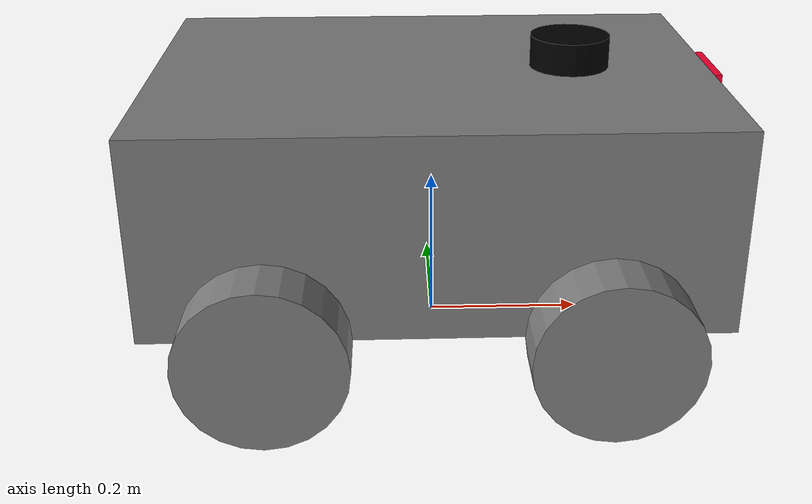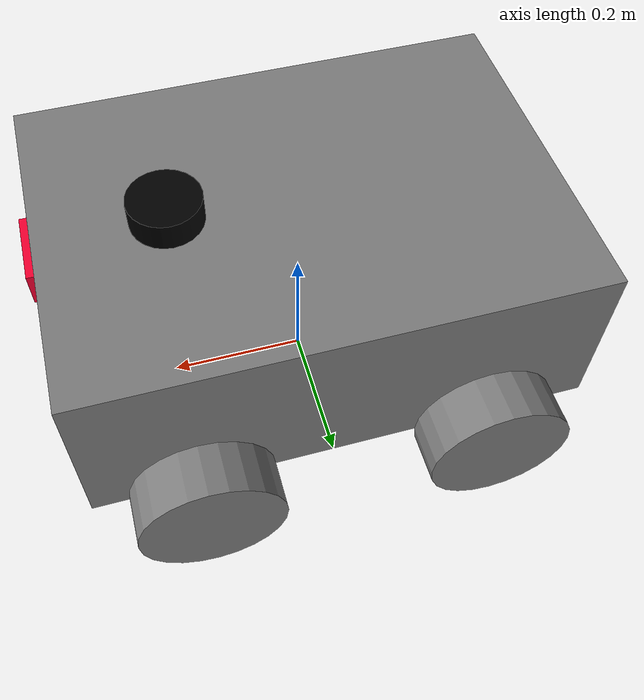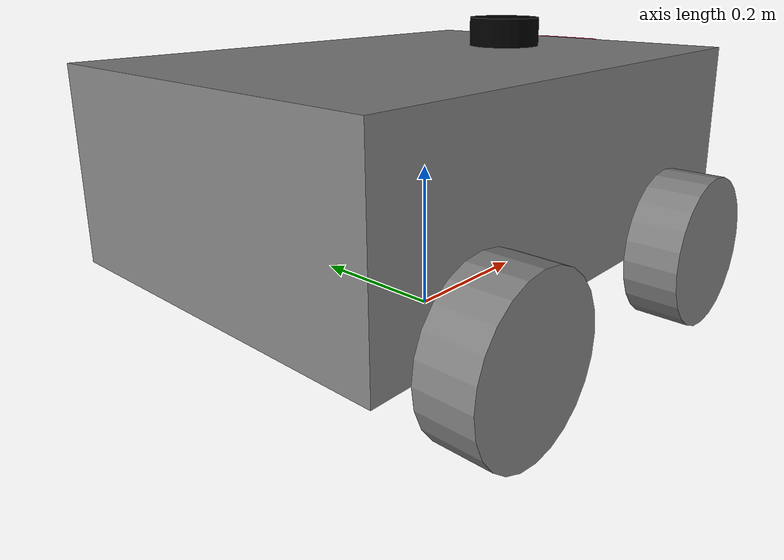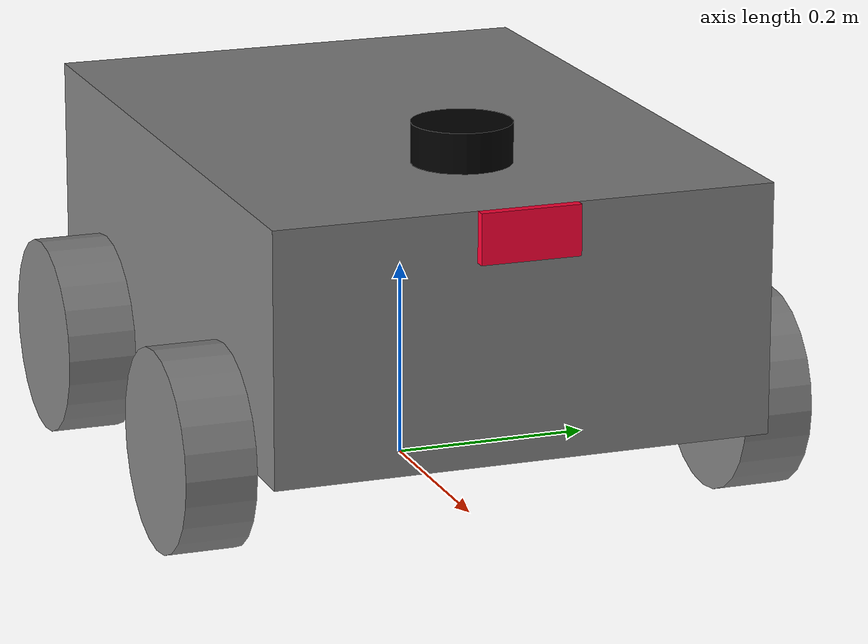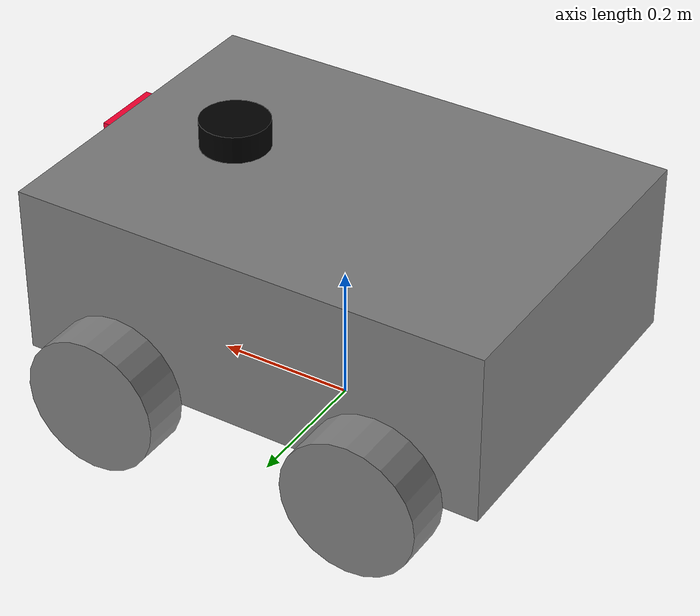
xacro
<?xml version="1.0"?>
<robot name="g2_robot" xmlns:xacro="http://www.ros.org/wiki/xacro">

    <xacro:include filename="common_properties.xacro" />
    <xacro:include filename="mobile_robot.xacro" />
    <xacro:include filename="mobile_robot_gazebo.xacro" />
    <xacro:include filename="camera.xacro" />
    <xacro:include filename="lidar.xacro" />

</robot>

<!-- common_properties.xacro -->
<robot xmlns:xacro="http://www.ros.org/wiki/xacro">

    <material name="grey">
        <color rgba="0.5 0.5 0.5 1" />
    </material>

    <material name="green">
        <color rgba="0 0.5 0 1" />
    </material>

    <material name="blue">
        <color rgba="0 0 1 1" />
    </material>

    <material name="yellow">
        <color rgba="0.5 0.5 0 1" />
    </material>

    <material name="orange">
        <color rgba="1 0.5 0 1" />
    </material>

    <material name="red">
        <color rgba="1 0 0.2 1" />
    </material>

    <material name="black">
        <color rgba="0 0 0 1" />
    </material>

    <xacro:macro name="box_inertia" params="mass l w h xyz rpy">
        <inertial>
            <origin xyz="${xyz}" rpy="0 0 0" />
            <mass value="${mass}" />
            <inertia ixx="${mass/12 * (h*h + l*l)}" ixy="0" ixz="0"
                     iyy="${mass/12 * (w*w + l*l)}" iyz="0"
                     izz="${mass/12 * (h*h + w*w)}" />
        </inertial>
    </xacro:macro>

    <xacro:macro name="wheel_inertia" params="mass l r xyz rpy">
        <inertial>
            <origin xyz="${xyz}" rpy="${rpy}" />
            <mass value="${mass}" />
            <inertia ixx="${mass/12 * (3*r*r + l*l)}" ixy="0" ixz="0"
                     iyy="${mass/12 * (3*r*r + l*l)}" iyz="0"
                     izz="${mass/2 * (r*r)}" />
        </inertial>
    </xacro:macro>

</robot>

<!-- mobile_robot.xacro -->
<robot xmlns:xacro="http://www.ros.org/wiki/xacro">

    <xacro:property name="wheel_radius" value="0.1" />
    <xacro:property name="wheel_lenght" value="0.07" />
    <xacro:property name="base_lenght" value="0.7" />
    <xacro:property name="base_width" value="0.5" />
    <xacro:property name="base_height" value="0.25" />
    <xacro:property name="base_xyz" value="0 0 ${base_height / 2}" />
    <xacro:property name="wheel_rpy" value="${pi / 2.0} 0 0" />

    <link name="base_footprint" />

    <link name="base_link">
        <visual>
            <geometry>
                <box size="${base_lenght} ${base_width} ${base_height}" />
            </geometry>
            <origin xyz="${base_xyz}" rpy="0 0 0" />
            <material name="grey" />
        </visual>
        <collision>
            <geometry>
                <box size="${base_lenght} ${base_width} ${base_height}" />
            </geometry>
            <origin xyz="${base_xyz}" rpy="0 0 0" />
        </collision>
        <xacro:box_inertia mass="15.0" l="${2*base_lenght}" w="${2*base_width}" h="${2*base_height}" xyz="${base_xyz}" rpy="0 0 0" />
    </link>

    <joint name="footprint_base_joint" type="fixed">
        <parent link="base_footprint" />
        <child link="base_link" />
        <origin xyz="0 0 ${wheel_radius}" rpy="0 0 0" />
    </joint>

    <xacro:macro name="create_wheel_link" params="prefix">

    <link name="${prefix}_wheel_link">
        <visual>
            <geometry>
                <cylinder radius="${wheel_radius}" length="${wheel_lenght}" />
            </geometry>
            <origin xyz="0 0 0" rpy="${wheel_rpy}" />
            <material name="grey" />
        </visual>
        <collision>
            <geometry>
                <cylinder radius="${wheel_radius}" length="${wheel_lenght}" />
            </geometry>
            <origin xyz="0 0 0" rpy="${wheel_rpy}" />
        </collision>
        <xacro:wheel_inertia mass="3.0" l="${2*wheel_lenght}" r="${2*wheel_radius}" xyz="0 0 0" rpy="${wheel_rpy}" />
    </link>

    </xacro:macro>

    <xacro:create_wheel_link prefix="rear_left" />

    <joint name="rear_left_wheel_joint" type="continuous">
        <parent link="base_link" />
        <child link="rear_left_wheel_link" />
        <origin xyz="${-base_lenght / 3.5} ${base_width / 2 + (wheel_lenght / 2)} 0" rpy="0 0 0" />
        <axis xyz="0 1 0" />
        <limit velocity="100.0" effort="100.0" />
    </joint>

    <xacro:create_wheel_link prefix="rear_right" />

    <joint name="rear_right_wheel_joint" type="continuous">
        <parent link="base_link" />
        <child link="rear_right_wheel_link" />
        <origin xyz="${-base_lenght / 3.5} ${-(base_width / 2 + (wheel_lenght / 2))} 0" rpy="0 0 0" />
         <axis xyz="0 1 0" />
    </joint>

    <xacro:create_wheel_link prefix="front_left" />

    <joint name="front_left_wheel_joint" type="continuous">
        <parent link="base_link" />
        <child link="front_left_wheel_link" />
        <origin xyz="${base_lenght / 3.5} ${base_width / 2 + (wheel_lenght / 2)} 0" rpy="0 0 0" />
        <axis xyz="0 1 0" />
    </joint>

    <xacro:create_wheel_link prefix="front_right" />

    <joint name="front_right_wheel_joint" type="continuous">
        <parent link="base_link" />
        <child link="front_right_wheel_link" />
        <origin xyz="${base_lenght / 3.5} ${-(base_width / 2 + (wheel_lenght / 2))} 0" rpy="0 0 0" />
         <axis xyz="0 1 0" />
    </joint>

</robot>

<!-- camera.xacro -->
<robot xmlns:xacro="http://www.ros.org/wiki/xacro">

    <xacro:property name="camera_l" value="0.01" />
    <xacro:property name="camera_w" value="0.1" />
    <xacro:property name="camera_h" value="0.05" />

    <link name="camera_link">
        <visual>
            <geometry>
                <box size="${camera_l} ${camera_w} ${camera_h}" />
            </geometry>
            <material name="red" />
        </visual>
        <collision>
            <geometry>
                <box size="${camera_l} ${camera_w} ${camera_h}" />
            </geometry>
        </collision>
        <xacro:box_inertia mass="0.1" l="${camera_l}" w="${camera_w}" h="${camera_h}" xyz="0 0 0" rpy="0 0 0" />
    </link>

    <joint name="base_camera_joint" type="fixed">
        <parent link="base_link" />
        <child link="camera_link" />
        <origin xyz="${(base_lenght + camera_l) / 2.0} 0 ${base_height - (camera_h / 2.0)}" rpy="0 0 0" />
    </joint>

    <link name="camera_link_optical" />

    <joint name="camera_optical_joint" type="fixed">
    <!-- these values have to be these values otherwise the gazebo camera
        image won't be aligned properly with the frame it is supposedly
        originating from -->
    <origin xyz="0 0 0" rpy="${-pi/2} 0 ${-pi/2}"/>
    <parent link="camera_link"/>
    <child link="camera_link_optical"/>
    </joint>

    <gazebo reference="camera_link">
        <material>Gazebo/Red</material>
        <sensor name="camera_sensor" type="depth">
            <pose>0 0 0 0 0 0</pose>
            <visualize>true</visualize>
            <update_rate>10.0</update_rate>
            <camera>
                <!-- not sure what's the default -->
                <image>
                    <format>B8G8R8</format> <!-- instead ofthe default for the non depth camera which is R8G8B8 -->
                    <width>320</width>     <!-- default is 320 --> <!-- recent change = 640 -->
                    <height>240</height>   <!-- default is 240 --> <!-- recent change = 480 -->
                </image>
            </camera>
            <plugin name="camera_controller" filename="libgazebo_ros_camera.so">
                <frame_name>camera_link_optical</frame_name>
            </plugin>
        </sensor>
    </gazebo>

</robot>

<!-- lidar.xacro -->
<robot xmlns:xacro="http://www.ros.org/wiki/xacro">

    <xacro:property name="lidar_radius" value="0.05" />
    <xacro:property name="lidar_h" value="0.04" />

    <link name="lidar_link">
        <visual>
            <geometry>
                <cylinder radius="${lidar_radius}" length="${lidar_h}" />
            </geometry>
            <material name="black" />
        </visual>
        <collision>
            <geometry>
                <box radius="${lidar_radius}" length="${lidar_h}" />
            </geometry>
        </collision>
        <xacro:wheel_inertia mass="0.1" l="${2*lidar_h}" r="${2*lidar_radius}" xyz="0 0 0" rpy="0 0 0" />
    </link>

    <joint name="base_lidar_joint" type="fixed">
        <parent link="base_link" />
        <child link="lidar_link" />
        <origin xyz="${base_lenght / 4.0} 0 ${base_height + (lidar_h / 2.0)}" rpy="0 0 0" />
    </joint>

    <!-- ${-(pi) / 12.0 * 11} = -2.87979327-->

    <gazebo reference="lidar_link">
        <material>Gazebo/Black</material>

        <sensor name="lidar" type="ray">
            <pose>0 0 0 0 0 0</pose>
            <visualize>true</visualize>
            <update_rate>10.0</update_rate>
            <ray>
                <scan>
                    <horizontal>
                        <samples>110</samples> <!-- originally was 330 (very high resolution)-->
                        <min_angle>${-(pi) / 12.0 * 11}</min_angle>
                        <max_angle>${pi / 12.0 * 11}</max_angle>
                    </horizontal>
                </scan>
                <range>
                    <min>0.3</min>
                    <max>12</max>
                </range>
            </ray>
            <plugin name="lidar_controller" filename="libgazebo_ros_ray_sensor.so">
                <ros>
                    <argument>~/out:=lidar</argument>
                </ros>
                <output_type>sensor_msgs/LaserScan</output_type>
                <frame_name>lidar_link</frame_name>
            </plugin>
        </sensor>
    </gazebo>

</robot>
